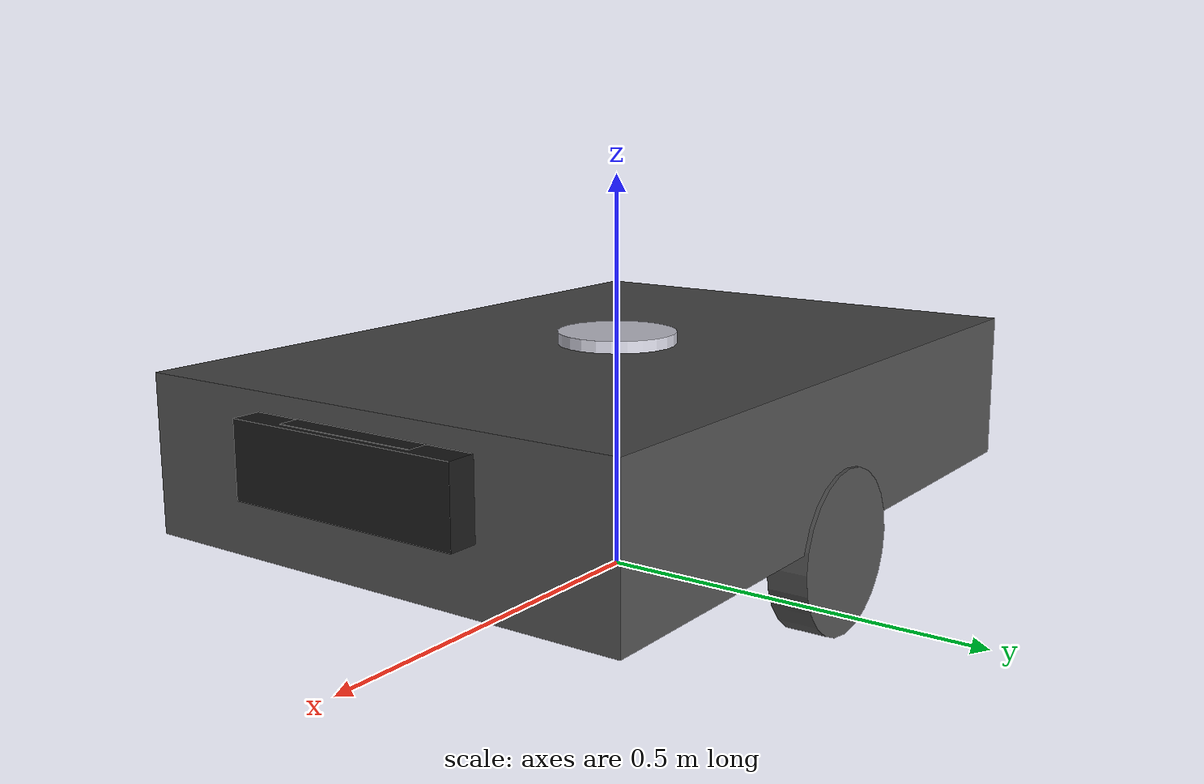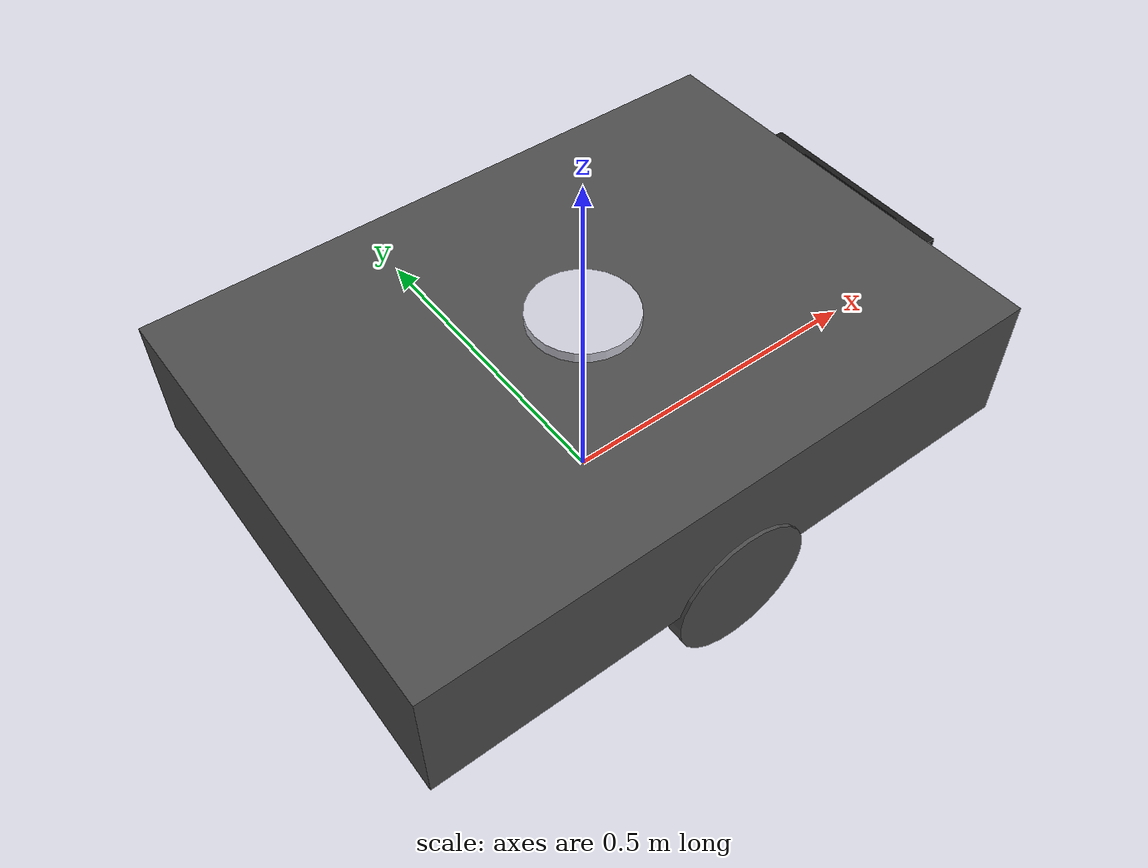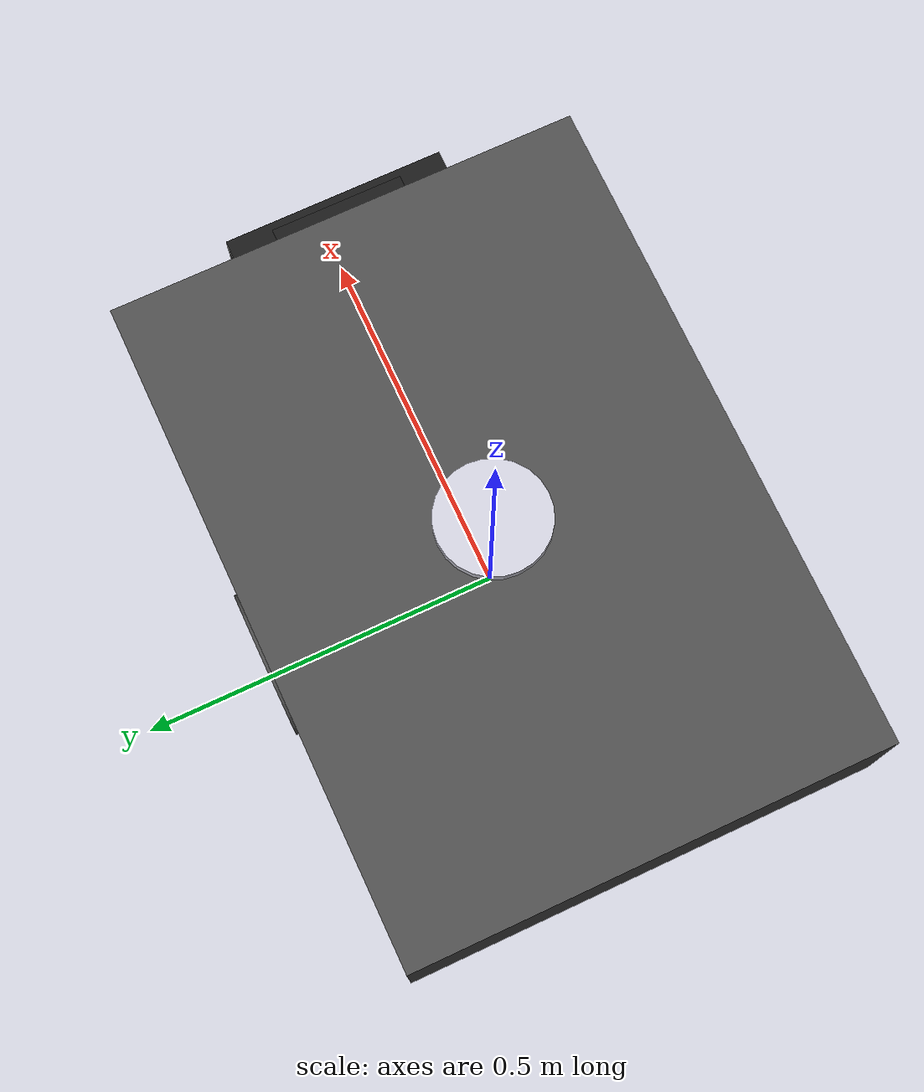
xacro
<?xml version="1.0"?>
<robot xmlns:xacro="http://www.ros.org/wiki/xacro" name="bcr_bot">

    <!-- BCR-001 AMR robot description
         Adapted from blackcoffeerobotics/bcr_bot (ros2 branch).
         Simplified for headless Docker sim — no Gazebo plugins, no mesh files. -->

    <!-- Physical constants (matching real bcr_bot) -->
    <xacro:property name="chassis_mass" value="70"/>
    <xacro:property name="chassis_length" value="0.9"/>
    <xacro:property name="chassis_width" value="0.64"/>
    <xacro:property name="chassis_height" value="0.19"/>

    <xacro:property name="traction_wheel_mass" value="1"/>
    <xacro:property name="traction_wheel_radius" value="0.1"/>
    <xacro:property name="traction_wheel_width" value="0.05"/>
    <xacro:property name="traction_track_width" value="0.6"/>

    <xacro:property name="trolley_wheel_mass" value="0.1"/>
    <xacro:property name="trolley_track_width" value="0.54"/>
    <xacro:property name="trolley_wheel_radius" value="0.06"/>

    <xacro:property name="eps" value="0.002"/>
    <xacro:property name="camera_baseline" value="0.06"/>

    <!-- Xacro args for sensor enable/disable -->
    <xacro:arg name="two_d_lidar_enabled" default="true"/>
    <xacro:arg name="camera_enabled" default="true"/>
    <xacro:arg name="stereo_camera_enabled" default="true"/>

    <!-- Load macros -->
    <xacro:include filename="$(find bcr_bot)/urdf/materials.xacro"/>
    <xacro:include filename="$(find bcr_bot)/urdf/macros.xacro"/>

    <!-- ======================== BASE ======================== -->

    <link name="base_footprint"/>

    <link name="base_link"/>

    <joint name="base_joint" type="fixed">
        <parent link="base_footprint"/>
        <child link="base_link"/>
        <origin xyz="0.0 0 ${chassis_height/2 + traction_wheel_radius}" rpy="0 0 0"/>
    </joint>

    <!-- Chassis -->
    <link name="chassis_link">
        <visual>
            <origin xyz="0 0 0" rpy="0 0 0"/>
            <geometry>
                <box size="${chassis_length} ${chassis_width} ${chassis_height}"/>
            </geometry>
            <material name="dark_grey"/>
        </visual>
        <collision>
            <geometry>
                <box size="${chassis_length} ${chassis_width} ${chassis_height}"/>
            </geometry>
        </collision>
        <inertial>
            <mass value="${chassis_mass}"/>
            <xacro:box_inertia m="${chassis_mass}" x="${chassis_length}" y="${chassis_width}" z="${chassis_height}"/>
        </inertial>
    </link>

    <joint name="chassis_joint" type="fixed">
        <parent link="base_link"/>
        <child link="chassis_link"/>
        <origin xyz="0 0 0" rpy="0 0 0"/>
    </joint>

    <!-- ======================== WHEELS ======================== -->

    <!-- 4 trolley (caster) wheels at corners -->
    <xacro:trolley_wheel cardinality="front" dexterity="left"
        origin_x="${chassis_length/2}" origin_y="${trolley_track_width/2}"
        origin_z="-${trolley_wheel_radius + chassis_height/2}"/>
    <xacro:trolley_wheel cardinality="front" dexterity="right"
        origin_x="${chassis_length/2}" origin_y="-${trolley_track_width/2}"
        origin_z="-${trolley_wheel_radius + chassis_height/2}"/>
    <xacro:trolley_wheel cardinality="back" dexterity="left"
        origin_x="-${chassis_length/2}" origin_y="${trolley_track_width/2}"
        origin_z="-${trolley_wheel_radius + chassis_height/2}"/>
    <xacro:trolley_wheel cardinality="back" dexterity="right"
        origin_x="-${chassis_length/2}" origin_y="-${trolley_track_width/2}"
        origin_z="-${trolley_wheel_radius + chassis_height/2}"/>

    <!-- 2 traction (drive) wheels at center -->
    <xacro:traction_wheel cardinality="middle" dexterity="left"
        origin_x="0" origin_y="${traction_track_width/2}"
        origin_z="-${chassis_height/2 + 2*trolley_wheel_radius + eps - traction_wheel_radius}"/>
    <xacro:traction_wheel cardinality="middle" dexterity="right"
        origin_x="0" origin_y="-${traction_track_width/2}"
        origin_z="-${chassis_height/2 + 2*trolley_wheel_radius + eps - traction_wheel_radius}"/>

    <!-- ======================== 2D LIDAR ======================== -->

    <xacro:if value="$(arg two_d_lidar_enabled)">
        <link name="two_d_lidar">
            <visual>
                <geometry><cylinder length="0.06" radius="0.075"/></geometry>
                <material name="aluminium"/>
            </visual>
            <collision>
                <geometry><cylinder length="0.06" radius="0.075"/></geometry>
            </collision>
            <inertial>
                <mass value="0.1"/>
                <xacro:cylinder_inertia m="0.1" r="0.075" h="0.06"/>
            </inertial>
        </link>
        <joint name="two_d_lidar_joint" type="fixed">
            <parent link="base_link"/>
            <child link="two_d_lidar"/>
            <origin xyz="0 0 0.08" rpy="0 0 0"/>
        </joint>
    </xacro:if>

    <!-- ======================== IMU ======================== -->

    <link name="imu_frame"/>
    <joint name="imu_joint" type="fixed">
        <parent link="base_link"/>
        <child link="imu_frame"/>
        <origin xyz="0 0 0.08" rpy="0 0 0"/>
    </joint>

    <!-- ======================== DEPTH CAMERA ======================== -->

    <xacro:if value="$(arg camera_enabled)">
        <link name="depth_camera_link">
            <visual>
                <geometry><box size="0.07 0.3 0.09"/></geometry>
                <material name="black"/>
            </visual>
            <collision>
                <geometry><box size="0.07 0.3 0.09"/></geometry>
            </collision>
            <inertial>
                <mass value="0.01"/>
                <xacro:box_inertia m="0.01" x="0.07" y="0.3" z="0.09"/>
            </inertial>
        </link>
        <joint name="depth_camera_joint" type="fixed">
            <parent link="base_link"/>
            <child link="depth_camera_link"/>
            <origin xyz="${chassis_length/2} 0 ${chassis_height/7}" rpy="0 0 0"/>
        </joint>
        <link name="depth_camera_optical"/>
        <joint name="depth_camera_optical_joint" type="fixed">
            <parent link="depth_camera_link"/>
            <child link="depth_camera_optical"/>
            <origin xyz="0 0 0" rpy="${-pi/2} 0 ${-pi/2}"/>
        </joint>
    </xacro:if>

    <!-- ======================== STEREO CAMERA ======================== -->

    <xacro:if value="$(arg stereo_camera_enabled)">
        <link name="stereo_camera">
            <visual>
                <geometry><box size="0.05 0.18 0.05"/></geometry>
                <material name="black"/>
            </visual>
            <collision>
                <geometry><box size="0.05 0.18 0.05"/></geometry>
            </collision>
            <inertial>
                <mass value="0.01"/>
                <xacro:box_inertia m="0.01" x="0.05" y="0.18" z="0.05"/>
            </inertial>
        </link>
        <joint name="stereo_camera_joint" type="fixed">
            <parent link="base_link"/>
            <child link="stereo_camera"/>
            <origin xyz="${chassis_length/2} 0 ${chassis_height/4}" rpy="0 0 0"/>
        </joint>
        <!-- Left optical frame -->
        <link name="stereo_left_link"/>
        <joint name="stereo_left_joint" type="fixed">
            <parent link="stereo_camera"/>
            <child link="stereo_left_link"/>
            <origin xyz="0 ${camera_baseline/2} 0" rpy="${-pi/2} 0 ${-pi/2}"/>
        </joint>
        <!-- Right optical frame -->
        <link name="stereo_right_link"/>
        <joint name="stereo_right_joint" type="fixed">
            <parent link="stereo_camera"/>
            <child link="stereo_right_link"/>
            <origin xyz="0 -${camera_baseline/2} 0" rpy="${-pi/2} 0 ${-pi/2}"/>
        </joint>
    </xacro:if>

    <!-- ======================== ROOF ======================== -->

    <link name="roof_link">
        <collision>
            <geometry><box size="${chassis_length} ${chassis_width} 0.015"/></geometry>
        </collision>
        <inertial>
            <mass value="1"/>
            <xacro:box_inertia m="1" x="${chassis_length}" y="${chassis_width}" z="0.015"/>
        </inertial>
    </link>
    <joint name="roof_joint" type="fixed">
        <parent link="chassis_link"/>
        <child link="roof_link"/>
        <origin xyz="0 0 0.16" rpy="0 0 0"/>
    </joint>

</robot>

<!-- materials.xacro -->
<robot xmlns:xacro="http://www.ros.org/wiki/xacro" name="bcr_bot">

    <material name="black">
        <color rgba="0.1 0.1 0.1 1.0"/>
    </material>

    <material name="dark_grey">
        <color rgba="0.3 0.3 0.3 1.0"/>
    </material>

    <material name="grey">
        <color rgba="0.6 0.6 0.6 1.0"/>
    </material>

    <material name="aluminium">
        <color rgba="0.8 0.8 0.85 1.0"/>
    </material>

    <material name="orange">
        <color rgba="1.0 0.5 0.0 1.0"/>
    </material>

</robot>

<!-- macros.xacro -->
<robot xmlns:xacro="http://www.ros.org/wiki/xacro" name="bcr_bot">

    <!-- Inertia macros (from blackcoffeerobotics/bcr_bot) -->

    <xacro:macro name="cylinder_inertia" params="m r h">
        <inertia ixx="${m * (3 * r * r + h * h) / 12}" ixy="0" ixz="0"
                 iyy="${m * (3 * r * r + h * h) / 12}" iyz="0"
                 izz="${m * r * r / 2}"/>
    </xacro:macro>

    <xacro:macro name="box_inertia" params="m x y z">
        <inertia ixx="${m * (y * y + z * z) / 12}" ixy="0" ixz="0"
                 iyy="${m * (x * x + z * z) / 12}" iyz="0"
                 izz="${m * (y * y + x * x) / 12}"/>
    </xacro:macro>

    <xacro:macro name="sphere_inertia" params="m r">
        <inertia ixx="${2 * m * r * r / 5}" ixy="0" ixz="0"
                 iyy="${2 * m * r * r / 5}" iyz="0"
                 izz="${2 * m * r * r / 5}"/>
    </xacro:macro>

    <!-- Trolley (caster) wheel — fixed joint, sphere collision -->
    <xacro:macro name="trolley_wheel" params="cardinality dexterity origin_x origin_y origin_z">
        <link name="${cardinality}_${dexterity}_wheel">
            <collision>
                <geometry><sphere radius="${trolley_wheel_radius}"/></geometry>
            </collision>
            <inertial>
                <mass value="${trolley_wheel_mass}"/>
                <xacro:sphere_inertia m="${trolley_wheel_mass}" r="${trolley_wheel_radius}"/>
            </inertial>
        </link>
        <joint name="${cardinality}_${dexterity}_wheel_joint" type="fixed">
            <parent link="base_link"/>
            <child link="${cardinality}_${dexterity}_wheel"/>
            <origin xyz="${origin_x} ${origin_y} ${origin_z}" rpy="0 0 0"/>
        </joint>
    </xacro:macro>

    <!-- Traction wheel — continuous joint for drive -->
    <xacro:macro name="traction_wheel" params="cardinality dexterity origin_x origin_y origin_z">
        <link name="${cardinality}_${dexterity}_wheel">
            <visual>
                <origin xyz="0 0 0" rpy="0 ${pi/2} ${pi/2}"/>
                <geometry><cylinder length="${traction_wheel_width}" radius="${traction_wheel_radius}"/></geometry>
                <material name="dark_grey"/>
            </visual>
            <collision>
                <origin xyz="0 0 0" rpy="0 ${pi/2} ${pi/2}"/>
                <geometry><cylinder length="${traction_wheel_width}" radius="${traction_wheel_radius}"/></geometry>
            </collision>
            <inertial>
                <origin xyz="0 0 0" rpy="0 ${pi/2} ${pi/2}"/>
                <mass value="${traction_wheel_mass}"/>
                <xacro:cylinder_inertia m="${traction_wheel_mass}" r="${traction_wheel_radius}" h="${traction_wheel_width}"/>
            </inertial>
        </link>
        <joint name="${cardinality}_${dexterity}_wheel_joint" type="continuous">
            <parent link="base_link"/>
            <child link="${cardinality}_${dexterity}_wheel"/>
            <origin xyz="${origin_x} ${origin_y} ${origin_z}" rpy="0 0 0"/>
            <axis xyz="0 1 0"/>
        </joint>
    </xacro:macro>

</robot>
